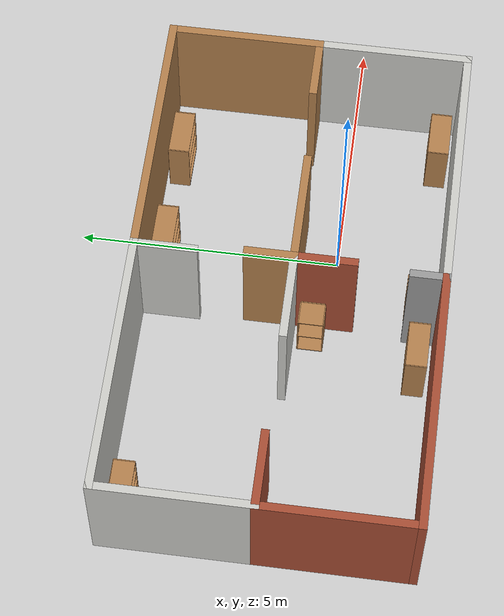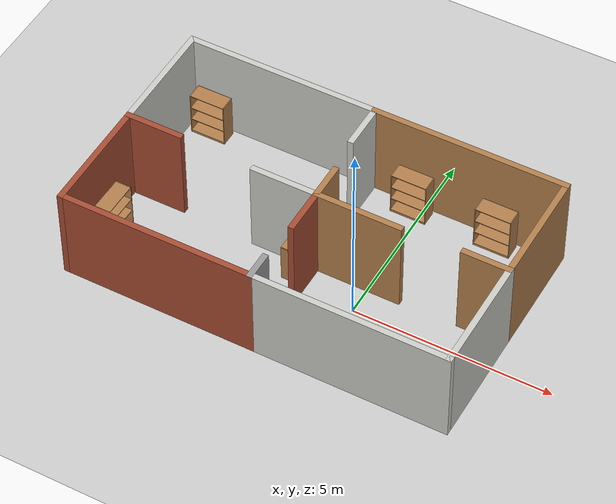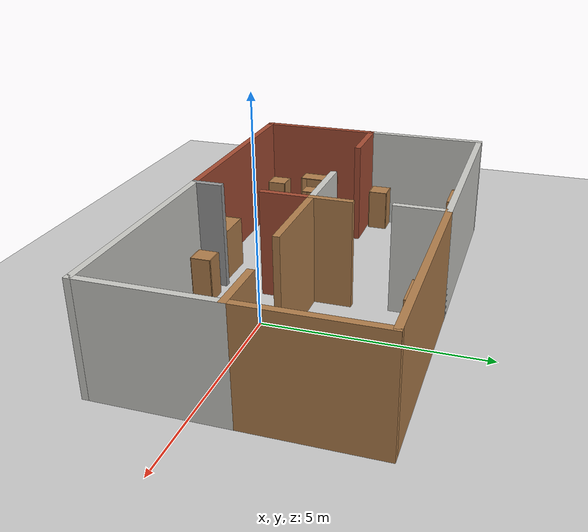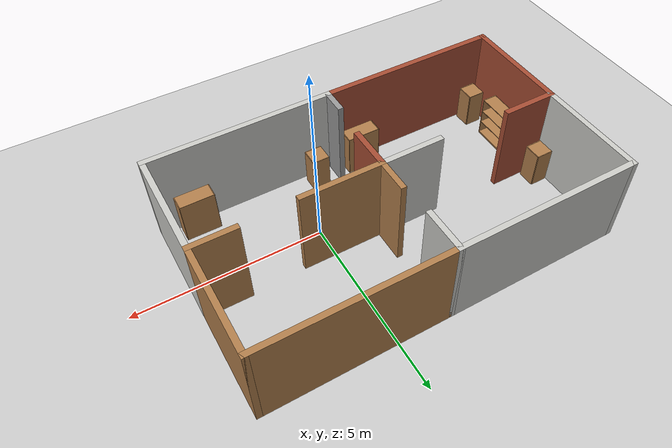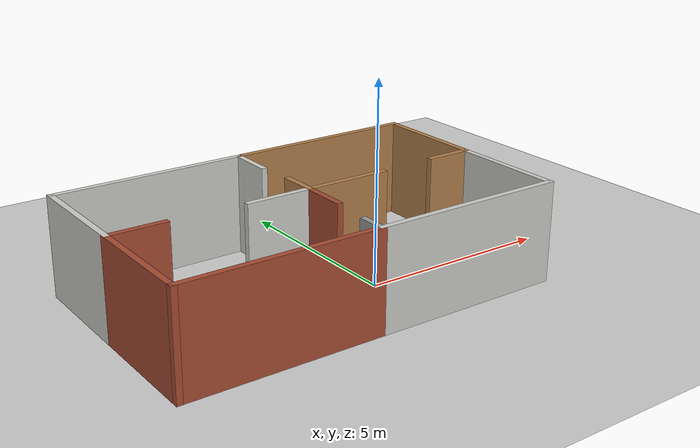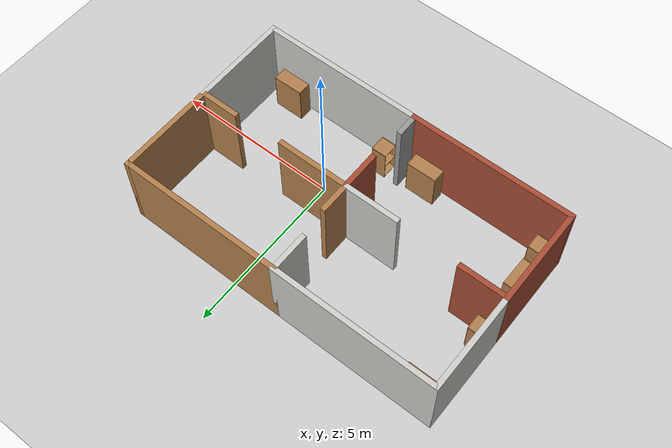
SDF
<sdf version="1.6">
 <world name="default">
  <light name="sun" type="directional">
   <pose>0 0 10 0 -0 0</pose>
   <diffuse>0.8 0.8 0.8 1</diffuse>
   <specular>0.2 0.2 0.2 1</specular>
   <attenuation>
    <range>1000</range>
    <constant>0.9</constant>
    <linear>0.01</linear>
    <quadratic>0.001</quadratic>
   </attenuation>
   <direction>-0.5 0.1 -0.9</direction>
  </light>
  <model name="ground_plane">
   <static>1</static>
   <link name="link">
    <collision name="collision">
     <geometry><plane><normal>0 0 1</normal><size>100 100</size></plane></geometry>
     <surface>
      <contact><collide_bitmask>65535</collide_bitmask></contact>
      <friction><ode><mu>100</mu><mu2>50</mu2></ode></friction>
     </surface>
    </collision>
    <visual name="visual">
     <cast_shadows>0</cast_shadows>
     <geometry><plane><normal>0 0 1</normal><size>100 100</size></plane></geometry>
     <material>
      <script><uri>file://media/materials/scripts/gazebo.material</uri><name>Gazebo/Grey</name></script>
     </material>
    </visual>
   </link>
  </model>
  <gravity>0 0 -9.8</gravity>
  <magnetic_field>6e-06 2.3e-05 -4.2e-05</magnetic_field>
  <atmosphere type="adiabatic"/>
  <physics name="default_physics" default="0" type="ode">
   <max_step_size>0.001</max_step_size>
   <real_time_factor>1</real_time_factor>
   <real_time_update_rate>1000</real_time_update_rate>
  </physics>
  <scene><ambient>0.4 0.4 0.4 1</ambient><background>0.7 0.7 0.7 1</background><shadows>1</shadows></scene>
  <spherical_coordinates>
   <surface_model>EARTH_WGS84</surface_model>
   <latitude_deg>0</latitude_deg>
   <longitude_deg>0</longitude_deg>
   <elevation>0</elevation>
   <heading_deg>0</heading_deg>
  </spherical_coordinates>
  <audio><device>default</device></audio>
  <plugin name="collision_map_creator" filename="libcollision_map_creator.so"/>
  <model name="cabinet">
   <static>1</static>
   <link name="cabinet_bottom_plate">
    <inertial>
     <pose>0 0 -1 0 -0 0</pose>
     <inertia><ixx>2.05</ixx><ixy>0</ixy><ixz>0</ixz><iyy>2.05</iyy><iyz>0</iyz><izz>2.05</izz></inertia>
     <mass>25</mass>
    </inertial>
    <collision name="cabinet_bottom_plate_geom">
     <pose>0 0 0.01 0 -0 0</pose>
     <geometry><box><size>0.45 0.45 0.02</size></box></geometry>
    </collision>
    <visual name="cabinet_bottom_plate_geom_visual">
     <pose>0 0 0.01 0 -0 0</pose>
     <geometry><box><size>0.45 0.45 0.02</size></box></geometry>
     <material>
      <script><uri>file://media/materials/scripts/gazebo.material</uri><name>Gazebo/Wood</name></script>
     </material>
    </visual>
    <collision name="cabinet_bottom_plate_geom_cabinet_back_plate">
     <pose>0.235 0 0.51 0 -0 0</pose>
     <geometry><box><size>0.02 0.45 1.02</size></box></geometry>
    </collision>
    <visual name="cabinet_bottom_plate_geom_cabinet_back_plate_visual">
     <pose>0.235 0 0.51 0 -0 0</pose>
     <geometry><box><size>0.02 0.45 1.02</size></box></geometry>
     <material>
      <script><uri>file://media/materials/scripts/gazebo.material</uri><name>Gazebo/Wood</name></script>
     </material>
    </visual>
    <collision name="cabinet_bottom_plate_geom_cabinet_left_plate">
     <pose>0 0.235 0.51 0 -0 0</pose>
     <geometry><box><size>0.45 0.02 1.02</size></box></geometry>
    </collision>
    <visual name="cabinet_bottom_plate_geom_cabinet_left_plate_visual">
     <pose>0 0.235 0.51 0 -0 0</pose>
     <geometry><box><size>0.45 0.02 1.02</size></box></geometry>
     <material>
      <script><uri>file://media/materials/scripts/gazebo.material</uri><name>Gazebo/Wood</name></script>
     </material>
    </visual>
    <collision name="cabinet_bottom_plate_geom_cabinet_middle_plate">
     <pose>0 0 0.51 0 -0 0</pose>
     <geometry><box><size>0.45 0.45 0.02</size></box></geometry>
    </collision>
    <visual name="cabinet_bottom_plate_geom_cabinet_middle_plate_visual">
     <pose>0 0 0.51 0 -0 0</pose>
     <geometry><box><size>0.45 0.45 0.02</size></box></geometry>
     <material>
      <script><uri>file://media/materials/scripts/gazebo.material</uri><name>Gazebo/Wood</name></script>
     </material>
    </visual>
    <collision name="cabinet_bottom_plate_geom_cabinet_right_plate">
     <pose>0 -0.235 0.51 0 -0 0</pose>
     <geometry><box><size>0.45 0.02 1.02</size></box></geometry>
    </collision>
    <visual name="cabinet_bottom_plate_geom_cabinet_right_plate_visual">
     <pose>0 -0.235 0.51 0 -0 0</pose>
     <geometry><box><size>0.45 0.02 1.02</size></box></geometry>
     <material>
      <script><uri>file://media/materials/scripts/gazebo.material</uri><name>Gazebo/Wood</name></script>
     </material>
    </visual>
    <collision name="cabinet_bottom_plate_geom_cabinet_top_plate">
     <pose>0 0 1.01 0 -0 0</pose>
     <geometry><box><size>0.45 0.45 0.02</size></box></geometry>
    </collision>
    <visual name="cabinet_bottom_plate_geom_cabinet_top_plate_visual">
     <pose>0 0 1.01 0 -0 0</pose>
     <geometry><box><size>0.45 0.45 0.02</size></box></geometry>
     <material>
      <script><uri>file://media/materials/scripts/gazebo.material</uri><name>Gazebo/Wood</name></script>
     </material>
    </visual>
   </link>
   <pose>-5.96546 1.15969 0 0 -0 0</pose>
  </model>
  <model name="cabinet_0">
   <static>1</static>
   <link name="cabinet_bottom_plate">
    <inertial>
     <pose>0 0 -1 0 -0 0</pose>
     <inertia><ixx>2.05</ixx><ixy>0</ixy><ixz>0</ixz><iyy>2.05</iyy><iyz>0</iyz><izz>2.05</izz></inertia>
     <mass>25</mass>
    </inertial>
    <collision name="cabinet_bottom_plate_geom">
     <pose>0 0 0.01 0 -0 0</pose>
     <geometry><box><size>0.45 0.45 0.02</size></box></geometry>
    </collision>
    <visual name="cabinet_bottom_plate_geom_visual">
     <pose>0 0 0.01 0 -0 0</pose>
     <geometry><box><size>0.45 0.45 0.02</size></box></geometry>
     <material>
      <script><uri>file://media/materials/scripts/gazebo.material</uri><name>Gazebo/Wood</name></script>
     </material>
    </visual>
    <collision name="cabinet_bottom_plate_geom_cabinet_back_plate">
     <pose>0.235 0 0.51 0 -0 0</pose>
     <geometry><box><size>0.02 0.45 1.02</size></box></geometry>
    </collision>
    <visual name="cabinet_bottom_plate_geom_cabinet_back_plate_visual">
     <pose>0.235 0 0.51 0 -0 0</pose>
     <geometry><box><size>0.02 0.45 1.02</size></box></geometry>
     <material>
      <script><uri>file://media/materials/scripts/gazebo.material</uri><name>Gazebo/Wood</name></script>
     </material>
    </visual>
    <collision name="cabinet_bottom_plate_geom_cabinet_left_plate">
     <pose>0 0.235 0.51 0 -0 0</pose>
     <geometry><box><size>0.45 0.02 1.02</size></box></geometry>
    </collision>
    <visual name="cabinet_bottom_plate_geom_cabinet_left_plate_visual">
     <pose>0 0.235 0.51 0 -0 0</pose>
     <geometry><box><size>0.45 0.02 1.02</size></box></geometry>
     <material>
      <script><uri>file://media/materials/scripts/gazebo.material</uri><name>Gazebo/Wood</name></script>
     </material>
    </visual>
    <collision name="cabinet_bottom_plate_geom_cabinet_middle_plate">
     <pose>0 0 0.51 0 -0 0</pose>
     <geometry><box><size>0.45 0.45 0.02</size></box></geometry>
    </collision>
    <visual name="cabinet_bottom_plate_geom_cabinet_middle_plate_visual">
     <pose>0 0 0.51 0 -0 0</pose>
     <geometry><box><size>0.45 0.45 0.02</size></box></geometry>
     <material>
      <script><uri>file://media/materials/scripts/gazebo.material</uri><name>Gazebo/Wood</name></script>
     </material>
    </visual>
    <collision name="cabinet_bottom_plate_geom_cabinet_right_plate">
     <pose>0 -0.235 0.51 0 -0 0</pose>
     <geometry><box><size>0.45 0.02 1.02</size></box></geometry>
    </collision>
    <visual name="cabinet_bottom_plate_geom_cabinet_right_plate_visual">
     <pose>0 -0.235 0.51 0 -0 0</pose>
     <geometry><box><size>0.45 0.02 1.02</size></box></geometry>
     <material>
      <script><uri>file://media/materials/scripts/gazebo.material</uri><name>Gazebo/Wood</name></script>
     </material>
    </visual>
    <collision name="cabinet_bottom_plate_geom_cabinet_top_plate">
     <pose>0 0 1.01 0 -0 0</pose>
     <geometry><box><size>0.45 0.45 0.02</size></box></geometry>
    </collision>
    <visual name="cabinet_bottom_plate_geom_cabinet_top_plate_visual">
     <pose>0 0 1.01 0 -0 0</pose>
     <geometry><box><size>0.45 0.45 0.02</size></box></geometry>
     <material>
      <script><uri>file://media/materials/scripts/gazebo.material</uri><name>Gazebo/Wood</name></script>
     </material>
    </visual>
   </link>
   <pose>-1.68697 0.332178 0 0 -0 0</pose>
  </model>
  <model name="bookshelf">
   <static>1</static>
   <link name="link">
    <inertial><mass>1</mass></inertial>
    <collision name="back">
     <pose>0 0.005 0.6 0 -0 0</pose>
     <geometry><box><size>0.9 0.01 1.2</size></box></geometry>
    </collision>
    <visual name="visual1">
     <pose>0 0.005 0.6 0 -0 0</pose>
     <geometry><box><size>0.9 0.01 1.2</size></box></geometry>
     <material>
      <script><uri>file://media/materials/scripts/gazebo.material</uri><name>Gazebo/Wood</name></script>
     </material>
    </visual>
    <collision name="left_side">
     <pose>0.45 -0.195 0.6 0 -0 0</pose>
     <geometry><box><size>0.02 0.4 1.2</size></box></geometry>
    </collision>
    <visual name="visual2">
     <pose>0.45 -0.195 0.6 0 -0 0</pose>
     <geometry><box><size>0.02 0.4 1.2</size></box></geometry>
     <material>
      <script><uri>file://media/materials/scripts/gazebo.material</uri><name>Gazebo/Wood</name></script>
     </material>
    </visual>
    <collision name="right_side">
     <pose>-0.45 -0.195 0.6 0 -0 0</pose>
     <geometry><box><size>0.02 0.4 1.2</size></box></geometry>
    </collision>
    <visual name="visual3">
     <pose>-0.45 -0.195 0.6 0 -0 0</pose>
     <geometry><box><size>0.02 0.4 1.2</size></box></geometry>
     <material>
      <script><uri>file://media/materials/scripts/gazebo.material</uri><name>Gazebo/Wood</name></script>
     </material>
    </visual>
    <collision name="bottom">
     <pose>0 -0.195 0.03 0 -0 0</pose>
     <geometry><box><size>0.88 0.4 0.06</size></box></geometry>
    </collision>
    <visual name="visual4">
     <pose>0 -0.195 0.03 0 -0 0</pose>
     <geometry><box><size>0.88 0.4 0.06</size></box></geometry>
     <material>
      <script><uri>file://media/materials/scripts/gazebo.material</uri><name>Gazebo/Wood</name></script>
     </material>
    </visual>
    <collision name="top">
     <pose>0 -0.195 1.19 0 -0 0</pose>
     <geometry><box><size>0.88 0.4 0.02</size></box></geometry>
    </collision>
    <visual name="visual5">
     <pose>0 -0.195 1.19 0 -0 0</pose>
     <geometry><box><size>0.88 0.4 0.02</size></box></geometry>
     <material>
      <script><uri>file://media/materials/scripts/gazebo.material</uri><name>Gazebo/Wood</name></script>
     </material>
    </visual>
    <collision name="low_shelf">
     <pose>0 -0.195 0.43 0 -0 0</pose>
     <geometry><box><size>0.88 0.4 0.02</size></box></geometry>
    </collision>
    <visual name="visual6">
     <pose>0 -0.195 0.43 0 -0 0</pose>
     <geometry><box><size>0.88 0.4 0.02</size></box></geometry>
     <material>
      <script><uri>file://media/materials/scripts/gazebo.material</uri><name>Gazebo/Wood</name></script>
     </material>
    </visual>
    <collision name="high_shelf">
     <pose>0 -0.195 0.8 0 -0 0</pose>
     <geometry><box><size>0.88 0.4 0.02</size></box></geometry>
    </collision>
    <visual name="visual7">
     <pose>0 -0.195 0.8 0 -0 0</pose>
     <geometry><box><size>0.88 0.4 0.02</size></box></geometry>
     <material>
      <script><uri>file://media/materials/scripts/gazebo.material</uri><name>Gazebo/Wood</name></script>
     </material>
    </visual>
   </link>
   <pose>1.92061 3.49853 0 0 -0 0</pose>
  </model>
  <model name="bookshelf_0">
   <static>1</static>
   <link name="link">
    <inertial><mass>1</mass></inertial>
    <collision name="back">
     <pose>0 0.005 0.6 0 -0 0</pose>
     <geometry><box><size>0.9 0.01 1.2</size></box></geometry>
    </collision>
    <visual name="visual1">
     <pose>0 0.005 0.6 0 -0 0</pose>
     <geometry><box><size>0.9 0.01 1.2</size></box></geometry>
     <material>
      <script><uri>file://media/materials/scripts/gazebo.material</uri><name>Gazebo/Wood</name></script>
     </material>
    </visual>
    <collision name="left_side">
     <pose>0.45 -0.195 0.6 0 -0 0</pose>
     <geometry><box><size>0.02 0.4 1.2</size></box></geometry>
    </collision>
    <visual name="visual2">
     <pose>0.45 -0.195 0.6 0 -0 0</pose>
     <geometry><box><size>0.02 0.4 1.2</size></box></geometry>
     <material>
      <script><uri>file://media/materials/scripts/gazebo.material</uri><name>Gazebo/Wood</name></script>
     </material>
    </visual>
    <collision name="right_side">
     <pose>-0.45 -0.195 0.6 0 -0 0</pose>
     <geometry><box><size>0.02 0.4 1.2</size></box></geometry>
    </collision>
    <visual name="visual3">
     <pose>-0.45 -0.195 0.6 0 -0 0</pose>
     <geometry><box><size>0.02 0.4 1.2</size></box></geometry>
     <material>
      <script><uri>file://media/materials/scripts/gazebo.material</uri><name>Gazebo/Wood</name></script>
     </material>
    </visual>
    <collision name="bottom">
     <pose>0 -0.195 0.03 0 -0 0</pose>
     <geometry><box><size>0.88 0.4 0.06</size></box></geometry>
    </collision>
    <visual name="visual4">
     <pose>0 -0.195 0.03 0 -0 0</pose>
     <geometry><box><size>0.88 0.4 0.06</size></box></geometry>
     <material>
      <script><uri>file://media/materials/scripts/gazebo.material</uri><name>Gazebo/Wood</name></script>
     </material>
    </visual>
    <collision name="top">
     <pose>0 -0.195 1.19 0 -0 0</pose>
     <geometry><box><size>0.88 0.4 0.02</size></box></geometry>
    </collision>
    <visual name="visual5">
     <pose>0 -0.195 1.19 0 -0 0</pose>
     <geometry><box><size>0.88 0.4 0.02</size></box></geometry>
     <material>
      <script><uri>file://media/materials/scripts/gazebo.material</uri><name>Gazebo/Wood</name></script>
     </material>
    </visual>
    <collision name="low_shelf">
     <pose>0 -0.195 0.43 0 -0 0</pose>
     <geometry><box><size>0.88 0.4 0.02</size></box></geometry>
    </collision>
    <visual name="visual6">
     <pose>0 -0.195 0.43 0 -0 0</pose>
     <geometry><box><size>0.88 0.4 0.02</size></box></geometry>
     <material>
      <script><uri>file://media/materials/scripts/gazebo.material</uri><name>Gazebo/Wood</name></script>
     </material>
    </visual>
    <collision name="high_shelf">
     <pose>0 -0.195 0.8 0 -0 0</pose>
     <geometry><box><size>0.88 0.4 0.02</size></box></geometry>
    </collision>
    <visual name="visual7">
     <pose>0 -0.195 0.8 0 -0 0</pose>
     <geometry><box><size>0.88 0.4 0.02</size></box></geometry>
     <material>
      <script><uri>file://media/materials/scripts/gazebo.material</uri><name>Gazebo/Wood</name></script>
     </material>
    </visual>
   </link>
   <pose>-0.246657 3.50263 0 0 -0 0</pose>
  </model>
  <model name="bookshelf_1">
   <static>1</static>
   <link name="link">
    <inertial><mass>1</mass></inertial>
    <collision name="back">
     <pose>0 0.005 0.6 0 -0 0</pose>
     <geometry><box><size>0.9 0.01 1.2</size></box></geometry>
    </collision>
    <visual name="visual1">
     <pose>0 0.005 0.6 0 -0 0</pose>
     <geometry><box><size>0.9 0.01 1.2</size></box></geometry>
     <material>
      <script><uri>file://media/materials/scripts/gazebo.material</uri><name>Gazebo/Wood</name></script>
     </material>
    </visual>
    <collision name="left_side">
     <pose>0.45 -0.195 0.6 0 -0 0</pose>
     <geometry><box><size>0.02 0.4 1.2</size></box></geometry>
    </collision>
    <visual name="visual2">
     <pose>0.45 -0.195 0.6 0 -0 0</pose>
     <geometry><box><size>0.02 0.4 1.2</size></box></geometry>
     <material>
      <script><uri>file://media/materials/scripts/gazebo.material</uri><name>Gazebo/Wood</name></script>
     </material>
    </visual>
    <collision name="right_side">
     <pose>-0.45 -0.195 0.6 0 -0 0</pose>
     <geometry><box><size>0.02 0.4 1.2</size></box></geometry>
    </collision>
    <visual name="visual3">
     <pose>-0.45 -0.195 0.6 0 -0 0</pose>
     <geometry><box><size>0.02 0.4 1.2</size></box></geometry>
     <material>
      <script><uri>file://media/materials/scripts/gazebo.material</uri><name>Gazebo/Wood</name></script>
     </material>
    </visual>
    <collision name="bottom">
     <pose>0 -0.195 0.03 0 -0 0</pose>
     <geometry><box><size>0.88 0.4 0.06</size></box></geometry>
    </collision>
    <visual name="visual4">
     <pose>0 -0.195 0.03 0 -0 0</pose>
     <geometry><box><size>0.88 0.4 0.06</size></box></geometry>
     <material>
      <script><uri>file://media/materials/scripts/gazebo.material</uri><name>Gazebo/Wood</name></script>
     </material>
    </visual>
    <collision name="top">
     <pose>0 -0.195 1.19 0 -0 0</pose>
     <geometry><box><size>0.88 0.4 0.02</size></box></geometry>
    </collision>
    <visual name="visual5">
     <pose>0 -0.195 1.19 0 -0 0</pose>
     <geometry><box><size>0.88 0.4 0.02</size></box></geometry>
     <material>
      <script><uri>file://media/materials/scripts/gazebo.material</uri><name>Gazebo/Wood</name></script>
     </material>
    </visual>
    <collision name="low_shelf">
     <pose>0 -0.195 0.43 0 -0 0</pose>
     <geometry><box><size>0.88 0.4 0.02</size></box></geometry>
    </collision>
    <visual name="visual6">
     <pose>0 -0.195 0.43 0 -0 0</pose>
     <geometry><box><size>0.88 0.4 0.02</size></box></geometry>
     <material>
      <script><uri>file://media/materials/scripts/gazebo.material</uri><name>Gazebo/Wood</name></script>
     </material>
    </visual>
    <collision name="high_shelf">
     <pose>0 -0.195 0.8 0 -0 0</pose>
     <geometry><box><size>0.88 0.4 0.02</size></box></geometry>
    </collision>
    <visual name="visual7">
     <pose>0 -0.195 0.8 0 -0 0</pose>
     <geometry><box><size>0.88 0.4 0.02</size></box></geometry>
     <material>
      <script><uri>file://media/materials/scripts/gazebo.material</uri><name>Gazebo/Wood</name></script>
     </material>
    </visual>
   </link>
   <pose>2.51876 -1.49687 0 0 -0 0</pose>
  </model>
  <model name="bookshelf_2">
   <static>1</static>
   <link name="link">
    <inertial><mass>1</mass></inertial>
    <collision name="back">
     <pose>0 0.005 0.6 0 -0 0</pose>
     <geometry><box><size>0.9 0.01 1.2</size></box></geometry>
    </collision>
    <visual name="visual1">
     <pose>0 0.005 0.6 0 -0 0</pose>
     <geometry><box><size>0.9 0.01 1.2</size></box></geometry>
     <material>
      <script><uri>file://media/materials/scripts/gazebo.material</uri><name>Gazebo/Wood</name></script>
     </material>
    </visual>
    <collision name="left_side">
     <pose>0.45 -0.195 0.6 0 -0 0</pose>
     <geometry><box><size>0.02 0.4 1.2</size></box></geometry>
    </collision>
    <visual name="visual2">
     <pose>0.45 -0.195 0.6 0 -0 0</pose>
     <geometry><box><size>0.02 0.4 1.2</size></box></geometry>
     <material>
      <script><uri>file://media/materials/scripts/gazebo.material</uri><name>Gazebo/Wood</name></script>
     </material>
    </visual>
    <collision name="right_side">
     <pose>-0.45 -0.195 0.6 0 -0 0</pose>
     <geometry><box><size>0.02 0.4 1.2</size></box></geometry>
    </collision>
    <visual name="visual3">
     <pose>-0.45 -0.195 0.6 0 -0 0</pose>
     <geometry><box><size>0.02 0.4 1.2</size></box></geometry>
     <material>
      <script><uri>file://media/materials/scripts/gazebo.material</uri><name>Gazebo/Wood</name></script>
     </material>
    </visual>
    <collision name="bottom">
     <pose>0 -0.195 0.03 0 -0 0</pose>
     <geometry><box><size>0.88 0.4 0.06</size></box></geometry>
    </collision>
    <visual name="visual4">
     <pose>0 -0.195 0.03 0 -0 0</pose>
     <geometry><box><size>0.88 0.4 0.06</size></box></geometry>
     <material>
      <script><uri>file://media/materials/scripts/gazebo.material</uri><name>Gazebo/Wood</name></script>
     </material>
    </visual>
    <collision name="top">
     <pose>0 -0.195 1.19 0 -0 0</pose>
     <geometry><box><size>0.88 0.4 0.02</size></box></geometry>
    </collision>
    <visual name="visual5">
     <pose>0 -0.195 1.19 0 -0 0</pose>
     <geometry><box><size>0.88 0.4 0.02</size></box></geometry>
     <material>
      <script><uri>file://media/materials/scripts/gazebo.material</uri><name>Gazebo/Wood</name></script>
     </material>
    </visual>
    <collision name="low_shelf">
     <pose>0 -0.195 0.43 0 -0 0</pose>
     <geometry><box><size>0.88 0.4 0.02</size></box></geometry>
    </collision>
    <visual name="visual6">
     <pose>0 -0.195 0.43 0 -0 0</pose>
     <geometry><box><size>0.88 0.4 0.02</size></box></geometry>
     <material>
      <script><uri>file://media/materials/scripts/gazebo.material</uri><name>Gazebo/Wood</name></script>
     </material>
    </visual>
    <collision name="high_shelf">
     <pose>0 -0.195 0.8 0 -0 0</pose>
     <geometry><box><size>0.88 0.4 0.02</size></box></geometry>
    </collision>
    <visual name="visual7">
     <pose>0 -0.195 0.8 0 -0 0</pose>
     <geometry><box><size>0.88 0.4 0.02</size></box></geometry>
     <material>
      <script><uri>file://media/materials/scripts/gazebo.material</uri><name>Gazebo/Wood</name></script>
     </material>
    </visual>
   </link>
   <pose>-5.62122 3.4804 0 0 -0 0</pose>
  </model>
  <model name="cabinet_clone">
   <static>1</static>
   <link name="cabinet_bottom_plate">
    <inertial>
     <pose>0 0 -1 0 -0 0</pose>
     <inertia><ixx>2.05</ixx><ixy>0</ixy><ixz>0</ixz><iyy>2.05</iyy><iyz>0</iyz><izz>2.05</izz></inertia>
     <mass>25</mass>
    </inertial>
    <collision name="cabinet_bottom_plate_geom">
     <pose>0 0 0.01 0 -0 0</pose>
     <geometry><box><size>0.45 0.45 0.02</size></box></geometry>
    </collision>
    <visual name="cabinet_bottom_plate_geom_visual">
     <pose>0 0 0.01 0 -0 0</pose>
     <geometry><box><size>0.45 0.45 0.02</size></box></geometry>
     <material>
      <script><uri>file://media/materials/scripts/gazebo.material</uri><name>Gazebo/Wood</name></script>
     </material>
    </visual>
    <collision name="cabinet_bottom_plate_geom_cabinet_back_plate">
     <pose>0.235 0 0.51 0 -0 0</pose>
     <geometry><box><size>0.02 0.45 1.02</size></box></geometry>
    </collision>
    <visual name="cabinet_bottom_plate_geom_cabinet_back_plate_visual">
     <pose>0.235 0 0.51 0 -0 0</pose>
     <geometry><box><size>0.02 0.45 1.02</size></box></geometry>
     <material>
      <script><uri>file://media/materials/scripts/gazebo.material</uri><name>Gazebo/Wood</name></script>
     </material>
    </visual>
    <collision name="cabinet_bottom_plate_geom_cabinet_left_plate">
     <pose>0 0.235 0.51 0 -0 0</pose>
     <geometry><box><size>0.45 0.02 1.02</size></box></geometry>
    </collision>
    <visual name="cabinet_bottom_plate_geom_cabinet_left_plate_visual">
     <pose>0 0.235 0.51 0 -0 0</pose>
     <geometry><box><size>0.45 0.02 1.02</size></box></geometry>
     <material>
      <script><uri>file://media/materials/scripts/gazebo.material</uri><name>Gazebo/Wood</name></script>
     </material>
    </visual>
    <collision name="cabinet_bottom_plate_geom_cabinet_middle_plate">
     <pose>0 0 0.51 0 -0 0</pose>
     <geometry><box><size>0.45 0.45 0.02</size></box></geometry>
    </collision>
    <visual name="cabinet_bottom_plate_geom_cabinet_middle_plate_visual">
     <pose>0 0 0.51 0 -0 0</pose>
     <geometry><box><size>0.45 0.45 0.02</size></box></geometry>
     <material>
      <script><uri>file://media/materials/scripts/gazebo.material</uri><name>Gazebo/Wood</name></script>
     </material>
    </visual>
    <collision name="cabinet_bottom_plate_geom_cabinet_right_plate">
     <pose>0 -0.235 0.51 0 -0 0</pose>
     <geometry><box><size>0.45 0.02 1.02</size></box></geometry>
    </collision>
    <visual name="cabinet_bottom_plate_geom_cabinet_right_plate_visual">
     <pose>0 -0.235 0.51 0 -0 0</pose>
     <geometry><box><size>0.45 0.02 1.02</size></box></geometry>
     <material>
      <script><uri>file://media/materials/scripts/gazebo.material</uri><name>Gazebo/Wood</name></script>
     </material>
    </visual>
    <collision name="cabinet_bottom_plate_geom_cabinet_top_plate">
     <pose>0 0 1.01 0 -0 0</pose>
     <geometry><box><size>0.45 0.45 0.02</size></box></geometry>
    </collision>
    <visual name="cabinet_bottom_plate_geom_cabinet_top_plate_visual">
     <pose>0 0 1.01 0 -0 0</pose>
     <geometry><box><size>0.45 0.45 0.02</size></box></geometry>
     <material>
      <script><uri>file://media/materials/scripts/gazebo.material</uri><name>Gazebo/Wood</name></script>
     </material>
    </visual>
   </link>
   <pose>-5.86965 -1.69208 0 0 -0 0</pose>
  </model>
  <model name="cabinet_1">
   <static>1</static>
   <link name="cabinet_bottom_plate">
    <inertial>
     <pose>0 0 -1 0 -0 0</pose>
     <inertia><ixx>2.05</ixx><ixy>0</ixy><ixz>0</ixz><iyy>2.05</iyy><iyz>0</iyz><izz>2.05</izz></inertia>
     <mass>25</mass>
    </inertial>
    <collision name="cabinet_bottom_plate_geom">
     <pose>0 0 0.01 0 -0 0</pose>
     <geometry><box><size>0.45 0.45 0.02</size></box></geometry>
    </collision>
    <visual name="cabinet_bottom_plate_geom_visual">
     <pose>0 0 0.01 0 -0 0</pose>
     <geometry><box><size>0.45 0.45 0.02</size></box></geometry>
     <material>
      <script><uri>file://media/materials/scripts/gazebo.material</uri><name>Gazebo/Wood</name></script>
     </material>
    </visual>
    <collision name="cabinet_bottom_plate_geom_cabinet_back_plate">
     <pose>0.235 0 0.51 0 -0 0</pose>
     <geometry><box><size>0.02 0.45 1.02</size></box></geometry>
    </collision>
    <visual name="cabinet_bottom_plate_geom_cabinet_back_plate_visual">
     <pose>0.235 0 0.51 0 -0 0</pose>
     <geometry><box><size>0.02 0.45 1.02</size></box></geometry>
     <material>
      <script><uri>file://media/materials/scripts/gazebo.material</uri><name>Gazebo/Wood</name></script>
     </material>
    </visual>
    <collision name="cabinet_bottom_plate_geom_cabinet_left_plate">
     <pose>0 0.235 0.51 0 -0 0</pose>
     <geometry><box><size>0.45 0.02 1.02</size></box></geometry>
    </collision>
    <visual name="cabinet_bottom_plate_geom_cabinet_left_plate_visual">
     <pose>0 0.235 0.51 0 -0 0</pose>
     <geometry><box><size>0.45 0.02 1.02</size></box></geometry>
     <material>
      <script><uri>file://media/materials/scripts/gazebo.material</uri><name>Gazebo/Wood</name></script>
     </material>
    </visual>
    <collision name="cabinet_bottom_plate_geom_cabinet_middle_plate">
     <pose>0 0 0.51 0 -0 0</pose>
     <geometry><box><size>0.45 0.45 0.02</size></box></geometry>
    </collision>
    <visual name="cabinet_bottom_plate_geom_cabinet_middle_plate_visual">
     <pose>0 0 0.51 0 -0 0</pose>
     <geometry><box><size>0.45 0.45 0.02</size></box></geometry>
     <material>
      <script><uri>file://media/materials/scripts/gazebo.material</uri><name>Gazebo/Wood</name></script>
     </material>
    </visual>
    <collision name="cabinet_bottom_plate_geom_cabinet_right_plate">
     <pose>0 -0.235 0.51 0 -0 0</pose>
     <geometry><box><size>0.45 0.02 1.02</size></box></geometry>
    </collision>
    <visual name="cabinet_bottom_plate_geom_cabinet_right_plate_visual">
     <pose>0 -0.235 0.51 0 -0 0</pose>
     <geometry><box><size>0.45 0.02 1.02</size></box></geometry>
     <material>
      <script><uri>file://media/materials/scripts/gazebo.material</uri><name>Gazebo/Wood</name></script>
     </material>
    </visual>
    <collision name="cabinet_bottom_plate_geom_cabinet_top_plate">
     <pose>0 0 1.01 0 -0 0</pose>
     <geometry><box><size>0.45 0.45 0.02</size></box></geometry>
    </collision>
    <visual name="cabinet_bottom_plate_geom_cabinet_top_plate_visual">
     <pose>0 0 1.01 0 -0 0</pose>
     <geometry><box><size>0.45 0.45 0.02</size></box></geometry>
     <material>
      <script><uri>file://media/materials/scripts/gazebo.material</uri><name>Gazebo/Wood</name></script>
     </material>
    </visual>
   </link>
   <pose>-0.82487 -1.6165 0 0 -0 0</pose>
  </model>
  <model name="bookshelf_5">
   <static>1</static>
   <link name="link">
    <inertial><mass>1</mass></inertial>
    <collision name="back">
     <pose>0 0.005 0.6 0 -0 0</pose>
     <geometry><box><size>0.9 0.01 1.2</size></box></geometry>
    </collision>
    <visual name="visual1">
     <pose>0 0.005 0.6 0 -0 0</pose>
     <geometry><box><size>0.9 0.01 1.2</size></box></geometry>
     <material>
      <script><uri>file://media/materials/scripts/gazebo.material</uri><name>Gazebo/Wood</name></script>
     </material>
    </visual>
    <collision name="left_side">
     <pose>0.45 -0.195 0.6 0 -0 0</pose>
     <geometry><box><size>0.02 0.4 1.2</size></box></geometry>
    </collision>
    <visual name="visual2">
     <pose>0.45 -0.195 0.6 0 -0 0</pose>
     <geometry><box><size>0.02 0.4 1.2</size></box></geometry>
     <material>
      <script><uri>file://media/materials/scripts/gazebo.material</uri><name>Gazebo/Wood</name></script>
     </material>
    </visual>
    <collision name="right_side">
     <pose>-0.45 -0.195 0.6 0 -0 0</pose>
     <geometry><box><size>0.02 0.4 1.2</size></box></geometry>
    </collision>
    <visual name="visual3">
     <pose>-0.45 -0.195 0.6 0 -0 0</pose>
     <geometry><box><size>0.02 0.4 1.2</size></box></geometry>
     <material>
      <script><uri>file://media/materials/scripts/gazebo.material</uri><name>Gazebo/Wood</name></script>
     </material>
    </visual>
    <collision name="bottom">
     <pose>0 -0.195 0.03 0 -0 0</pose>
     <geometry><box><size>0.88 0.4 0.06</size></box></geometry>
    </collision>
    <visual name="visual4">
     <pose>0 -0.195 0.03 0 -0 0</pose>
     <geometry><box><size>0.88 0.4 0.06</size></box></geometry>
     <material>
      <script><uri>file://media/materials/scripts/gazebo.material</uri><name>Gazebo/Wood</name></script>
     </material>
    </visual>
    <collision name="top">
     <pose>0 -0.195 1.19 0 -0 0</pose>
     <geometry><box><size>0.88 0.4 0.02</size></box></geometry>
    </collision>
    <visual name="visual5">
     <pose>0 -0.195 1.19 0 -0 0</pose>
     <geometry><box><size>0.88 0.4 0.02</size></box></geometry>
     <material>
      <script><uri>file://media/materials/scripts/gazebo.material</uri><name>Gazebo/Wood</name></script>
     </material>
    </visual>
    <collision name="low_shelf">
     <pose>0 -0.195 0.43 0 -0 0</pose>
     <geometry><box><size>0.88 0.4 0.02</size></box></geometry>
    </collision>
    <visual name="visual6">
     <pose>0 -0.195 0.43 0 -0 0</pose>
     <geometry><box><size>0.88 0.4 0.02</size></box></geometry>
     <material>
      <script><uri>file://media/materials/scripts/gazebo.material</uri><name>Gazebo/Wood</name></script>
     </material>
    </visual>
    <collision name="high_shelf">
     <pose>0 -0.195 0.8 0 -0 0</pose>
     <geometry><box><size>0.88 0.4 0.02</size></box></geometry>
    </collision>
    <visual name="visual7">
     <pose>0 -0.195 0.8 0 -0 0</pose>
     <geometry><box><size>0.88 0.4 0.02</size></box></geometry>
     <material>
      <script><uri>file://media/materials/scripts/gazebo.material</uri><name>Gazebo/Wood</name></script>
     </material>
    </visual>
   </link>
   <pose>-2.16811 -1.48815 0 0 -0 0</pose>
  </model>
  <model name="bookshelf_6">
   <static>1</static>
   <link name="link">
    <inertial><mass>1</mass></inertial>
    <collision name="back">
     <pose>0 0.005 0.6 0 -0 0</pose>
     <geometry><box><size>0.9 0.01 1.2</size></box></geometry>
    </collision>
    <visual name="visual1">
     <pose>0 0.005 0.6 0 -0 0</pose>
     <geometry><box><size>0.9 0.01 1.2</size></box></geometry>
     <material>
      <script><uri>file://media/materials/scripts/gazebo.material</uri><name>Gazebo/Wood</name></script>
     </material>
    </visual>
    <collision name="left_side">
     <pose>0.45 -0.195 0.6 0 -0 0</pose>
     <geometry><box><size>0.02 0.4 1.2</size></box></geometry>
    </collision>
    <visual name="visual2">
     <pose>0.45 -0.195 0.6 0 -0 0</pose>
     <geometry><box><size>0.02 0.4 1.2</size></box></geometry>
     <material>
      <script><uri>file://media/materials/scripts/gazebo.material</uri><name>Gazebo/Wood</name></script>
     </material>
    </visual>
    <collision name="right_side">
     <pose>-0.45 -0.195 0.6 0 -0 0</pose>
     <geometry><box><size>0.02 0.4 1.2</size></box></geometry>
    </collision>
    <visual name="visual3">
     <pose>-0.45 -0.195 0.6 0 -0 0</pose>
     <geometry><box><size>0.02 0.4 1.2</size></box></geometry>
     <material>
      <script><uri>file://media/materials/scripts/gazebo.material</uri><name>Gazebo/Wood</name></script>
     </material>
    </visual>
    <collision name="bottom">
     <pose>0 -0.195 0.03 0 -0 0</pose>
     <geometry><box><size>0.88 0.4 0.06</size></box></geometry>
    </collision>
    <visual name="visual4">
     <pose>0 -0.195 0.03 0 -0 0</pose>
     <geometry><box><size>0.88 0.4 0.06</size></box></geometry>
     <material>
      <script><uri>file://media/materials/scripts/gazebo.material</uri><name>Gazebo/Wood</name></script>
     </material>
    </visual>
    <collision name="top">
     <pose>0 -0.195 1.19 0 -0 0</pose>
     <geometry><box><size>0.88 0.4 0.02</size></box></geometry>
    </collision>
    <visual name="visual5">
     <pose>0 -0.195 1.19 0 -0 0</pose>
     <geometry><box><size>0.88 0.4 0.02</size></box></geometry>
     <material>
      <script><uri>file://media/materials/scripts/gazebo.material</uri><name>Gazebo/Wood</name></script>
     </material>
    </visual>
    <collision name="low_shelf">
     <pose>0 -0.195 0.43 0 -0 0</pose>
     <geometry><box><size>0.88 0.4 0.02</size></box></geometry>
    </collision>
    <visual name="visual6">
     <pose>0 -0.195 0.43 0 -0 0</pose>
     <geometry><box><size>0.88 0.4 0.02</size></box></geometry>
     <material>
      <script><uri>file://media/materials/scripts/gazebo.material</uri><name>Gazebo/Wood</name></script>
     </material>
    </visual>
    <collision name="high_shelf">
     <pose>0 -0.195 0.8 0 -0 0</pose>
     <geometry><box><size>0.88 0.4 0.02</size></box></geometry>
    </collision>
    <visual name="visual7">
     <pose>0 -0.195 0.8 0 -0 0</pose>
     <geometry><box><size>0.88 0.4 0.02</size></box></geometry>
     <material>
      <script><uri>file://media/materials/scripts/gazebo.material</uri><name>Gazebo/Wood</name></script>
     </material>
    </visual>
   </link>
   <pose>-6.1468 -0.549307 0 0 -0 1.55978</pose>
  </model>
  <model name="Untitled_1">
   <pose>-1.43669 0.80543 0 0 -0 0</pose>
   <link name="Wall_30">
    <collision name="Wall_30_Collision">
     <geometry><box><size>5 0.15 2.5</size></box></geometry>
     <pose>0 0 1.25 0 -0 0</pose>
    </collision>
    <visual name="Wall_30_Visual">
     <pose>0 0 1.25 0 -0 0</pose>
     <geometry><box><size>5 0.15 2.5</size></box></geometry>
     <material>
      <script><uri>file://media/materials/scripts/gazebo.material</uri><name>Gazebo/CeilingTiled</name></script>
      <ambient>1 1 1 1</ambient>
     </material>
     <meta><layer>0</layer></meta>
    </visual>
    <pose>-2.425 2.85 0 0 -0 0</pose>
   </link>
   <link name="Wall_31">
    <collision name="Wall_31_Collision">
     <geometry><box><size>5 0.15 2.5</size></box></geometry>
     <pose>0 0 1.25 0 -0 0</pose>
    </collision>
    <visual name="Wall_31_Visual">
     <pose>0 0 1.25 0 -0 0</pose>
     <geometry><box><size>5 0.15 2.5</size></box></geometry>
     <material>
      <script><uri>file://media/materials/scripts/gazebo.material</uri><name>Gazebo/Wood</name></script>
      <ambient>1 1 1 1</ambient>
     </material>
     <meta><layer>0</layer></meta>
    </visual>
    <pose>2.425 2.85 0 0 -0 0</pose>
   </link>
   <link name="Wall_32">
    <collision name="Wall_32_Collision">
     <geometry><box><size>3 0.15 2.5</size></box></geometry>
     <pose>0 0 1.25 0 -0 0</pose>
    </collision>
    <visual name="Wall_32_Visual">
     <pose>0 0 1.25 0 -0 0</pose>
     <geometry><box><size>3 0.15 2.5</size></box></geometry>
     <material>
      <script><uri>file://media/materials/scripts/gazebo.material</uri><name>Gazebo/Wood</name></script>
      <ambient>1 1 1 1</ambient>
     </material>
     <meta><layer>0</layer></meta>
    </visual>
    <pose>4.85 1.425 0 0 -0 -1.5708</pose>
   </link>
   <link name="Wall_34">
    <collision name="Wall_34_Collision">
     <geometry><box><size>3 0.15 2.5</size></box></geometry>
     <pose>0 0 1.25 0 -0 0</pose>
    </collision>
    <visual name="Wall_34_Visual">
     <pose>0 0 1.25 0 -0 0</pose>
     <geometry><box><size>3 0.15 2.5</size></box></geometry>
     <material>
      <script><uri>file://media/materials/scripts/gazebo.material</uri><name>Gazebo/CeilingTiled</name></script>
      <ambient>1 1 1 1</ambient>
     </material>
     <meta><layer>0</layer></meta>
    </visual>
    <pose>4.85 -1.425 0 0 -0 -1.5708</pose>
   </link>
   <link name="Wall_36">
    <collision name="Wall_36_Collision">
     <geometry><box><size>5 0.15 2.5</size></box></geometry>
     <pose>0 0 1.25 0 -0 0</pose>
    </collision>
    <visual name="Wall_36_Visual">
     <pose>0 0 1.25 0 -0 0</pose>
     <geometry><box><size>5 0.15 2.5</size></box></geometry>
     <material>
      <script><uri>file://media/materials/scripts/gazebo.material</uri><name>Gazebo/CeilingTiled</name></script>
      <ambient>1 1 1 1</ambient>
     </material>
     <meta><layer>0</layer></meta>
    </visual>
    <pose>2.425 -2.85 0 0 -0 3.14159</pose>
   </link>
   <link name="Wall_37">
    <collision name="Wall_37_Collision">
     <geometry><box><size>5 0.15 2.5</size></box></geometry>
     <pose>0 0 1.25 0 -0 0</pose>
    </collision>
    <visual name="Wall_37_Visual">
     <pose>0 0 1.25 0 -0 0</pose>
     <geometry><box><size>5 0.15 2.5</size></box></geometry>
     <material>
      <script><uri>file://media/materials/scripts/gazebo.material</uri><name>Gazebo/Bricks</name></script>
      <ambient>1 1 1 1</ambient>
     </material>
     <meta><layer>0</layer></meta>
    </visual>
    <pose>-2.425 -2.85 0 0 -0 3.14159</pose>
   </link>
   <link name="Wall_39">
    <collision name="Wall_39_Collision">
     <geometry><box><size>3 0.15 2.5</size></box></geometry>
     <pose>0 0 1.25 0 -0 0</pose>
    </collision>
    <visual name="Wall_39_Visual">
     <pose>0 0 1.25 0 -0 0</pose>
     <geometry><box><size>3 0.15 2.5</size></box></geometry>
     <material>
      <script><uri>file://media/materials/scripts/gazebo.material</uri><name>Gazebo/Bricks</name></script>
      <ambient>1 1 1 1</ambient>
     </material>
     <meta><layer>0</layer></meta>
    </visual>
    <pose>-4.85 -1.425 0 0 -0 1.5708</pose>
   </link>
   <link name="Wall_40">
    <collision name="Wall_40_Collision">
     <geometry><box><size>3 0.15 2.5</size></box></geometry>
     <pose>0 0 1.25 0 -0 0</pose>
    </collision>
    <visual name="Wall_40_Visual">
     <pose>0 0 1.25 0 -0 0</pose>
     <geometry><box><size>3 0.15 2.5</size></box></geometry>
     <material>
      <script><uri>file://media/materials/scripts/gazebo.material</uri><name>Gazebo/CeilingTiled</name></script>
      <ambient>1 1 1 1</ambient>
     </material>
     <meta><layer>0</layer></meta>
    </visual>
    <pose>-4.85 1.425 0 0 -0 1.5708</pose>
   </link>
   <link name="Wall_42">
    <collision name="Wall_42_Collision">
     <geometry><box><size>1.5 0.15 2.5</size></box></geometry>
     <pose>0 0 1.25 0 -0 0</pose>
    </collision>
    <visual name="Wall_42_Visual">
     <pose>0 0 1.25 0 -0 0</pose>
     <geometry><box><size>1.5 0.15 2.5</size></box></geometry>
     <material>
      <script><uri>file://media/materials/scripts/gazebo.material</uri><name>Gazebo/Bricks</name></script>
      <ambient>1 1 1 1</ambient>
     </material>
     <meta><layer>0</layer></meta>
    </visual>
    <pose>-4.175 0 0 0 -0 0</pose>
   </link>
   <link name="Wall_45">
    <collision name="Wall_45_Collision">
     <geometry><box><size>1.25 0.15 2.5</size></box></geometry>
     <pose>0 0 1.25 0 -0 0</pose>
    </collision>
    <visual name="Wall_45_Visual">
     <pose>0 0 1.25 0 -0 0</pose>
     <geometry><box><size>1.25 0.15 2.5</size></box></geometry>
     <material>
      <script><uri>file://media/materials/scripts/gazebo.material</uri><name>Gazebo/CeilingTiled</name></script>
      <ambient>1 1 1 1</ambient>
     </material>
     <meta><layer>0</layer></meta>
    </visual>
    <pose>0 2.3 0 0 -0 -1.5708</pose>
   </link>
   <link name="Wall_47">
    <collision name="Wall_47_Collision">
     <geometry><box><size>0.75 0.15 2.5</size></box></geometry>
     <pose>0 0 1.25 0 -0 0</pose>
    </collision>
    <visual name="Wall_47_Visual">
     <pose>0 0 1.25 0 -0 0</pose>
     <geometry><box><size>0.75 0.15 2.5</size></box></geometry>
     <material>
      <script><uri>file://media/materials/scripts/gazebo.material</uri><name>Gazebo/Grey</name></script>
      <ambient>1 1 1 1</ambient>
     </material>
     <meta><layer>0</layer></meta>
    </visual>
    <pose>0 -2.55 0 0 -0 1.5708</pose>
   </link>
   <link name="Wall_49">
    <collision name="Wall_49_Collision">
     <geometry><box><size>1.75 0.15 2.5</size></box></geometry>
     <pose>0 0 1.25 0 -0 0</pose>
    </collision>
    <visual name="Wall_49_Visual">
     <pose>0 0 1.25 0 -0 0</pose>
     <geometry><box><size>1.75 0.15 2.5</size></box></geometry>
     <material>
      <script><uri>file://media/materials/scripts/gazebo.material</uri><name>Gazebo/CeilingTiled</name></script>
      <ambient>1 1 1 1</ambient>
     </material>
     <meta><layer>0</layer></meta>
    </visual>
    <pose>-0.706172 -0.070905 0 0 -0 0</pose>
   </link>
   <link name="Wall_50">
    <collision name="Wall_50_Collision">
     <geometry><box><size>1 0.15 2.5</size></box></geometry>
     <pose>0 0 1.25 0 -0 0</pose>
    </collision>
    <visual name="Wall_50_Visual">
     <pose>0 0 1.25 0 -0 0</pose>
     <geometry><box><size>1 0.15 2.5</size></box></geometry>
     <material>
      <script><uri>file://media/materials/scripts/gazebo.material</uri><name>Gazebo/Wood</name></script>
      <ambient>1 1 1 1</ambient>
     </material>
     <meta><layer>0</layer></meta>
    </visual>
    <pose>0.093828 0.354095 0 0 -0 1.5708</pose>
   </link>
   <link name="Wall_52">
    <collision name="Wall_52_Collision">
     <geometry><box><size>1.25 0.15 2.5</size></box></geometry>
     <pose>0 0 1.25 0 -0 0</pose>
    </collision>
    <visual name="Wall_52_Visual">
     <pose>0 0 1.25 0 -0 0</pose>
     <geometry><box><size>1.25 0.15 2.5</size></box></geometry>
     <material>
      <script><uri>file://media/materials/scripts/gazebo.material</uri><name>Gazebo/Bricks</name></script>
      <ambient>1 1 1 1</ambient>
     </material>
     <meta><layer>0</layer></meta>
    </visual>
    <pose>0.093828 -0.620905 0 0 -0 -1.5708</pose>
   </link>
   <link name="Wall_54">
    <collision name="Wall_54_Collision">
     <geometry><box><size>2.25 0.15 2.5</size></box></geometry>
     <pose>0 0 1.25 0 -0 0</pose>
    </collision>
    <visual name="Wall_54_Visual">
     <pose>0 0 1.25 0 -0 0</pose>
     <geometry><box><size>2.25 0.15 2.5</size></box></geometry>
     <material>
      <script><uri>file://media/materials/scripts/gazebo.material</uri><name>Gazebo/Wood</name></script>
      <ambient>1 1 1 1</ambient>
     </material>
     <meta><layer>0</layer></meta>
    </visual>
    <pose>1.14383 -0.070905 0 0 -0 0</pose>
   </link>
   <link name="Wall_57">
    <collision name="Wall_57_Collision">
     <geometry><box><size>1.25 0.15 2.5</size></box></geometry>
     <pose>0 0 1.25 0 -0 0</pose>
    </collision>
    <visual name="Wall_57_Visual">
     <pose>0 0 1.25 0 -0 0</pose>
     <geometry><box><size>1.25 0.15 2.5</size></box></geometry>
     <material>
      <script><uri>file://media/materials/scripts/gazebo.material</uri><name>Gazebo/Wood</name></script>
      <ambient>1 1 1 1</ambient>
     </material>
     <meta><layer>0</layer></meta>
    </visual>
    <pose>4.3 0 0 0 -0 3.14159</pose>
   </link>
   <static>1</static>
  </model>
 </world>
</sdf>
